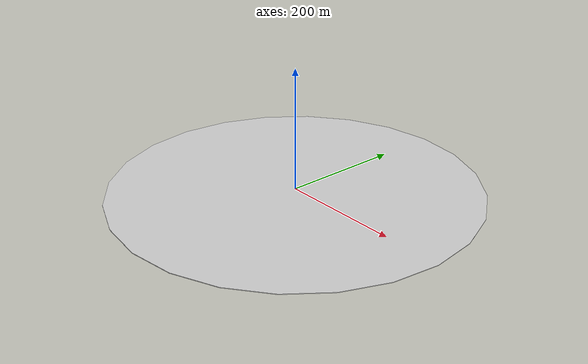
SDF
<?xml version="1.0"?>
<sdf version="1.6">
  <world name="ground_plane">
    <physics name="10.0ms" type="ignored">
      <max_step_size>10.0e-3</max_step_size>
      <real_time_factor>1</real_time_factor>
      <dart>
        <collision_detector>bullet</collision_detector>
        <solver>
          <solver_type>dantzig</solver_type>
        </solver>
      </dart>
    </physics>
    <plugin filename="libignition-gazebo-physics-system.so" name="ignition::gazebo::systems::Physics">
      <engine>
        <filename>libignition-physics-dartsim-plugin.so</filename>
      </engine>
    </plugin>
    <plugin filename="libignition-gazebo-user-commands-system.so" name="ignition::gazebo::systems::UserCommands"/>
    <plugin filename="libignition-gazebo-scene-broadcaster-system.so" name="ignition::gazebo::systems::SceneBroadcaster"/>
    <scene>
      <ambient>1.0 1.0 1.0</ambient>
      <background>0.8 0.8 0.8</background>
      <sky/>
    </scene>
    <spherical_coordinates>
      <surface_model>EARTH_WGS84</surface_model>
      <world_frame_orientation>ENU</world_frame_orientation>
      <latitude_deg>-23</latitude_deg>
      <longitude_deg>-43</longitude_deg>
      <elevation>0</elevation>
      <heading_deg>0</heading_deg>
    </spherical_coordinates>
    <light type="directional" name="sun">
      <pose>0 0 50 0 0 0</pose>
      <diffuse>0.8 0.8 0.8 1</diffuse>
      <specular>0.2 0.2 0.2 1</specular>
      <attenuation>
        <range>1000</range>
        <linear>0.01</linear>
        <constant>0.9</constant>
        <quadratic>0.001</quadratic>
      </attenuation>
      <direction>-0.5 0.1 -0.9</direction>
      <cast_shadows>true</cast_shadows>
    </light>
    <model name="ground_plane">
      <static>true</static>
      <pose>0 0 -0.5 0 0 0</pose>
      <link name="ground_plane_link">
        <collision name="ground_plane_collision">
          <geometry>
            <cylinder>
              <radius>300</radius>
              <length>1</length>
            </cylinder>
          </geometry>
        </collision>
        <visual name="ground_plane_visual">
          <geometry>
            <cylinder>
              <radius>300</radius>
              <length>1</length>
            </cylinder>
          </geometry>
          <material>
            <ambient>0.8 0.8 0.8 1</ambient>
            <diffuse>0.8 0.8 0.8 1</diffuse>
            <specular>0.8 0.8 0.8 1</specular>
          </material>
        </visual>
      </link>
    </model>
  </world>
</sdf>
